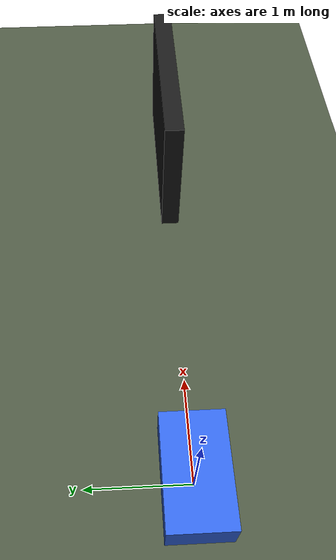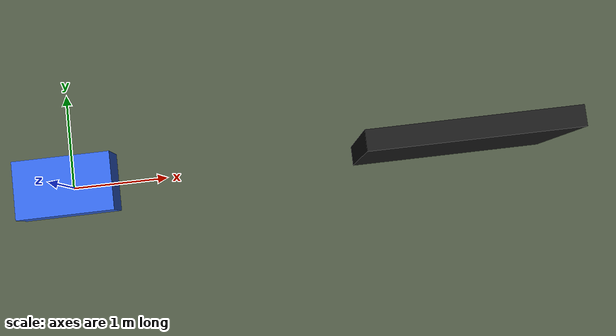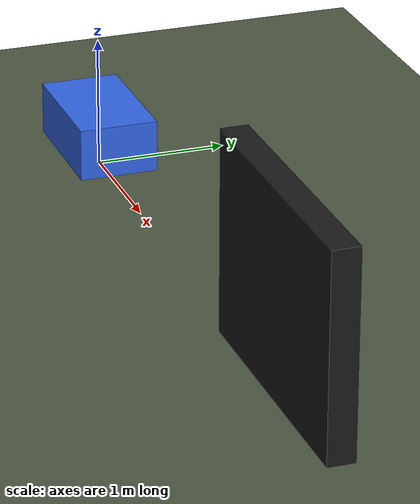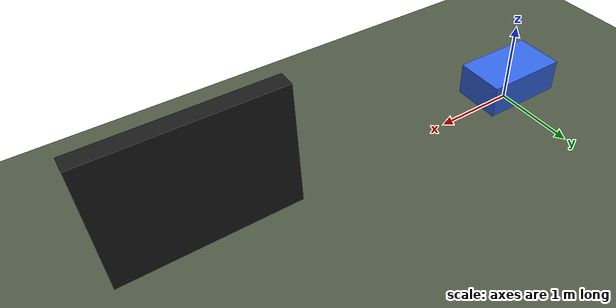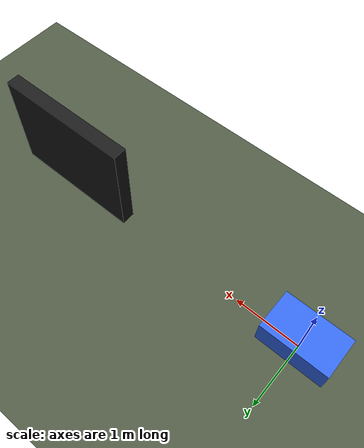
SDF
<?xml version="1.0"?>
<sdf version="1.6">
<world name="default">
<!-- 水下环境全局配置 -->
    <physics type="ode">
      <max_step_size>0.001</max_step_size>
      <real_time_factor>1</real_time_factor>
      <ode>
        <solver>
          <type>quick</type>
          <iters>10</iters>
        </solver>
      </ode>
    </physics>
    <!-- 水下场景光效与雾效 -->
    <scene>
      <ambient>0.12 0.22 0.32 1</ambient>
      <background>0.06 0.16 0.28 1</background>
      <shadows>false</shadows>
      <fog>
        <type>linear</type>
        <color>0.06 0.16 0.28 1</color>
        <density>0.35</density>
        <start>1.5</start>
        <end>18</end>
      </fog>
    </scene>
<!-- 模型状态服务 提供set_model_state控制接口 -->
    <plugin name="gazebo_ros_state" filename="libgazebo_ros_state.so">
      <ros>
        <namespace>/gazebo</namespace>
      </ros>
      <update_rate>100.0</update_rate>
    </plugin>

  <!-- 地面 -->
  <model name="ground">
    <static>true</static>
    <link name="link">
      <collision name="collision">
        <geometry><plane><normal>0 0 1</normal><size>100 100</size></plane></geometry>
      </collision>
      <visual name="visual">
        <geometry><plane><normal>0 0 1</normal><size>100 100</size></plane></geometry>
        <material>
          <ambient>0.22 0.26 0.2 1</ambient>
          <diffuse>0.3 0.34 0.26 1</diffuse>
        </material>
      </visual>
    </link>
  </model>
  <!-- 障碍物墙体 -->
  <model name="wall1">
    <static>true</static>
    <pose>4 0 0.75 0 0 1.5708</pose>
    <link name="link">
      <collision name="collision">
        <geometry><box><size>0.2 2 1.5</size></box></geometry>
      </collision>
      <visual name="visual">
        <geometry><box><size>0.2 2 1.5</size></box></geometry>
        <material>
          <ambient>0.1 0.1 0.1 1</ambient>
          <diffuse>0.1 0.1 0.1 1</diffuse>
        </material>
      </visual>
    </link>
  </model>
<!-- AUV 水下机器人 -->
    <model name="auv">
      <pose>0 0 0.3 0 0 0</pose>
      <link name="base_link">
        <inertial>
          <mass>5.0</mass>
          <inertia>
            <ixx>0.1</ixx>
            <iyy>0.1</iyy>
            <izz>0.05</izz>
          </inertia>
        </inertial>

        <!-- 水下流体速度衰减（水阻）：模拟水体阻尼感，加减速更平缓 -->
        <velocity_decay>
          <linear>0.99 0.99 0.99</linear>
          <angular>1.05 1.05 1.05</angular>
        </velocity_decay>
        <collision name="base_collision">
          <geometry><box><size>1.0 0.6 0.4</size></box></geometry>
        </collision>
        <visual name="base_visual">
          <geometry><box><size>1.0 0.6 0.4</size></box></geometry>
          <material>
            <ambient>0.1 0.3 0.8 1</ambient>
            <diffuse>0.2 0.4 0.9 1</diffuse>
          </material>
        </visual>
<!-- 前置相机 -->
      <sensor name="camera" type="camera">
          <pose>0.55 0 0 0 0 0</pose>
          <always_on>true</always_on>
  	  <update_rate>20</update_rate>
          <camera>
            <horizontal_fov>1.047</horizontal_fov>
            <image>
              <width>640</width>
              <height>480</height>
            </image>
            <clip>
              <near>0.1</near>
              <far>50</far>
            </clip>
          </camera>
          <plugin name="camera_controller" filename="libgazebo_ros_camera.so">
            <ros>
              <namespace>/auv/camera</namespace>
            </ros>
            <camera_name>camera</camera_name>
            <frame_name>base_link</frame_name>
          </plugin>
        </sensor>
      </link>
      <!-- 平面运动驱动 控制x/y平移，锁定深度0.3m -->
      <plugin name="planar_move" filename="libgazebo_ros_planar_move.so">
        <ros>
          <namespace>/auv</namespace>
        </ros>
        <link_name>base_link</link_name>
        <topic_name>cmd_vel</topic_name>
        <odom_topic>odom</odom_topic>
        <odom_frame>odom</odom_frame>
        <robot_base_frame>base_link</robot_base_frame>
        <publish_odom>true</publish_odom>
        <publish_tf>true</publish_tf>
        <!-- 锁定运行深度，彻底解决上浮问题 -->
        <distance>0.3</distance>
      </plugin>
    </model>

</world>
</sdf>
